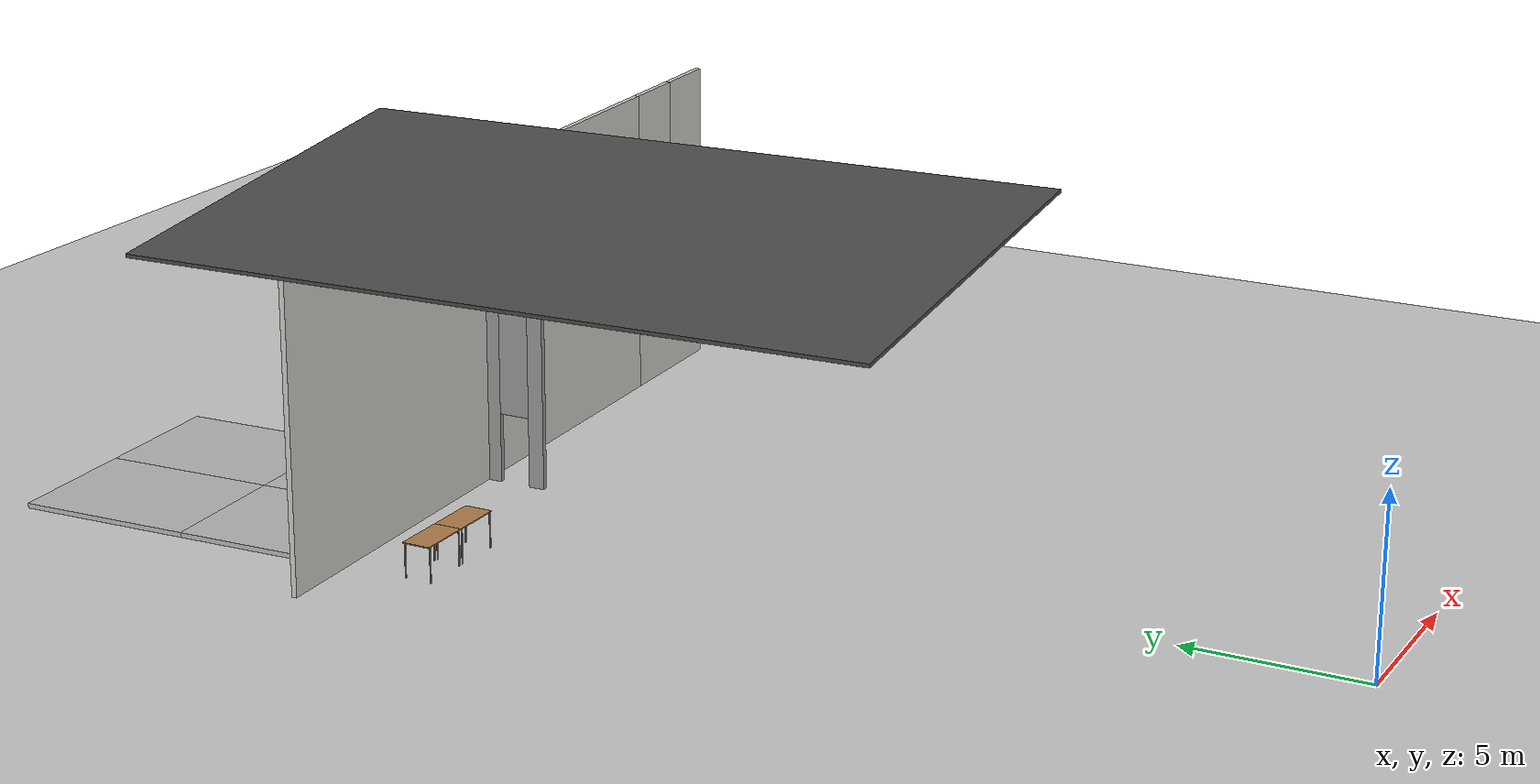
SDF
<sdf version="1.7">
 <world name="default">
  <model name="ground_plane">
   <static>1</static>
   <link name="link">
    <collision name="collision">
     <geometry><plane><normal>0 0 1</normal><size>100 100</size></plane></geometry>
     <surface><friction><ode><mu>100</mu><mu2>50</mu2></ode></friction></surface>
    </collision>
    <visual name="visual">
     <cast_shadows>0</cast_shadows>
     <geometry><plane><normal>0 0 1</normal><size>100 100</size></plane></geometry>
     <material>
      <script><uri>file://media/materials/scripts/gazebo.material</uri><name>Gazebo/Grey</name></script>
     </material>
    </visual>
   </link>
  </model>
  <model name="vehicle_test1">
   <pose>1.6419 -2.1357 0 0 -0 0</pose>
   <link name="Wall_7">
    <pose>2.0191 28.2467 0 0 -0 0.031157</pose>
    <visual name="Wall_7_Visual_0">
     <pose>-2.00829 0 4.5 0 -0 0</pose>
     <geometry><box><size>18.7004 0.15 9</size></box></geometry>
     <material>
      <script><uri>file://media/materials/scripts/gazebo.material</uri><name>Gazebo/CeilingTiled</name></script>
      <ambient>0.921569 0.807843 0.615686 1</ambient>
     </material>
     <meta><layer>0</layer></meta>
    </visual>
    <collision name="Wall_7_Collision_0">
     <geometry><box><size>18.7004 0.15 9</size></box></geometry>
     <pose>-2.00829 0 4.5 0 -0 0</pose>
    </collision>
    <visual name="Wall_7_Visual_1">
     <pose>9.35019 0 1.5 0 -0 0</pose>
     <geometry><box><size>4.01657 0.15 3</size></box></geometry>
     <material>
      <script><uri>file://media/materials/scripts/gazebo.material</uri><name>Gazebo/CeilingTiled</name></script>
      <ambient>0.921569 0.807843 0.615686 1</ambient>
     </material>
     <meta><layer>0</layer></meta>
    </visual>
    <collision name="Wall_7_Collision_1">
     <geometry><box><size>4.01657 0.15 3</size></box></geometry>
     <pose>9.35019 0 1.5 0 -0 0</pose>
    </collision>
    <visual name="Wall_7_Visual_2">
     <pose>10.3502 0 6 0 -0 0</pose>
     <geometry><box><size>2.01658 0.15 6</size></box></geometry>
     <material>
      <script><uri>file://media/materials/scripts/gazebo.material</uri><name>Gazebo/CeilingTiled</name></script>
      <ambient>0.921569 0.807843 0.615686 1</ambient>
     </material>
     <meta><layer>0</layer></meta>
    </visual>
    <collision name="Wall_7_Collision_2">
     <geometry><box><size>2.01658 0.15 6</size></box></geometry>
     <pose>10.3502 0 6 0 -0 0</pose>
    </collision>
    <visual name="Wall_7_Visual_3">
     <pose>8.3419 0 6.5 0 -0 0</pose>
     <geometry><box><size>2 0.15 5</size></box></geometry>
     <material>
      <script><uri>file://media/materials/scripts/gazebo.material</uri><name>Gazebo/CeilingTiled</name></script>
      <ambient>0.921569 0.807843 0.615686 1</ambient>
     </material>
     <meta><layer>0</layer></meta>
    </visual>
    <collision name="Wall_7_Collision_3">
     <geometry><box><size>2 0.15 5</size></box></geometry>
     <pose>8.3419 0 6.5 0 -0 0</pose>
    </collision>
   </link>
   <link name="Wall_84">
    <pose>0.396102 27.2322 0 0 -0 1.5708</pose>
    <visual name="Wall_84_Visual_0">
     <pose>-0.644142 0 2.5 0 -0 0</pose>
     <geometry><box><size>0.461716 0.15 5</size></box></geometry>
     <material>
      <script><uri>file://media/materials/scripts/gazebo.material</uri><name>Gazebo/Grey</name></script>
      <ambient>1 1 1 1</ambient>
     </material>
     <meta><layer>0</layer></meta>
    </visual>
    <collision name="Wall_84_Collision_0">
     <geometry><box><size>0.461716 0.15 5</size></box></geometry>
     <pose>-0.644142 0 2.5 0 -0 0</pose>
    </collision>
    <visual name="Wall_84_Visual_1">
     <pose>0.680858 0 2.5 0 -0 0</pose>
     <geometry><box><size>0.388284 0.15 5</size></box></geometry>
     <material>
      <script><uri>file://media/materials/scripts/gazebo.material</uri><name>Gazebo/Grey</name></script>
      <ambient>1 1 1 1</ambient>
     </material>
     <meta><layer>0</layer></meta>
    </visual>
    <collision name="Wall_84_Collision_1">
     <geometry><box><size>0.388284 0.15 5</size></box></geometry>
     <pose>0.680858 0 2.5 0 -0 0</pose>
    </collision>
    <visual name="Wall_84_Visual_2">
     <pose>0.036716 0 3.5 0 -0 0</pose>
     <geometry><box><size>0.9 0.15 3</size></box></geometry>
     <material>
      <script><uri>file://media/materials/scripts/gazebo.material</uri><name>Gazebo/Grey</name></script>
      <ambient>1 1 1 1</ambient>
     </material>
     <meta><layer>0</layer></meta>
    </visual>
    <collision name="Wall_84_Collision_2">
     <geometry><box><size>0.9 0.15 3</size></box></geometry>
     <pose>0.036716 0 3.5 0 -0 0</pose>
    </collision>
   </link>
   <static>1</static>
  </model>
  <model name="mud_box_1">
   <static>1</static>
   <link name="link">
    <collision name="collision"><geometry><box><size>8 10 0.2</size></box></geometry></collision>
    <visual name="visual_1">
     <pose>-2 2.5 0 0 -0 0</pose>
     <cast_shadows>0</cast_shadows>
     <geometry><box><size>4 5 0.2</size></box></geometry>
     <material>
      <script>
       <uri>model://mud_box/materials/scripts</uri>
       <uri>model://mud_box/materials/textures</uri>
       <name>vrc/mud</name>
      </script>
     </material>
    </visual>
    <visual name="visual_2">
     <pose>2 2.5 0 0 -0 0</pose>
     <cast_shadows>0</cast_shadows>
     <geometry><box><size>4 5 0.2</size></box></geometry>
     <material>
      <script>
       <uri>model://mud_box/materials/scripts</uri>
       <uri>model://mud_box/materials/textures</uri>
       <name>vrc/mud</name>
      </script>
     </material>
    </visual>
    <visual name="visual_3">
     <pose>2 -2.5 0 0 -0 0</pose>
     <cast_shadows>0</cast_shadows>
     <geometry><box><size>4 5 0.2</size></box></geometry>
     <material>
      <script>
       <uri>model://mud_box/materials/scripts</uri>
       <uri>model://mud_box/materials/textures</uri>
       <name>vrc/mud</name>
      </script>
     </material>
    </visual>
    <visual name="visual_4">
     <pose>-2 -2.5 0 0 -0 0</pose>
     <cast_shadows>0</cast_shadows>
     <geometry><box><size>4 5 0.2</size></box></geometry>
     <material>
      <script>
       <uri>model://mud_box/materials/scripts</uri>
       <uri>model://mud_box/materials/textures</uri>
       <name>vrc/mud</name>
      </script>
     </material>
    </visual>
   </link>
   <pose>-1.6161 31.0602 0 0 -0 0.039813</pose>
  </model>
  <model name="table">
   <static>1</static>
   <link name="link">
    <collision name="surface">
     <pose>0 0 1 0 -0 0</pose>
     <geometry><box><size>1.5 0.8 0.03</size></box></geometry>
     <surface><friction><ode><mu>0.6</mu><mu2>0.6</mu2></ode></friction></surface>
    </collision>
    <visual name="visual1">
     <pose>0 0 1 0 -0 0</pose>
     <geometry><box><size>1.5 0.8 0.03</size></box></geometry>
     <material>
      <script><uri>file://media/materials/scripts/gazebo.material</uri><name>Gazebo/Wood</name></script>
     </material>
    </visual>
    <collision name="front_left_leg">
     <pose>0.68 0.38 0.5 0 -0 0</pose>
     <geometry><cylinder><radius>0.02</radius><length>1</length></cylinder></geometry>
    </collision>
    <visual name="front_left_leg">
     <pose>0.68 0.38 0.5 0 -0 0</pose>
     <geometry><cylinder><radius>0.02</radius><length>1</length></cylinder></geometry>
     <material>
      <script><uri>file://media/materials/scripts/gazebo.material</uri><name>Gazebo/Grey</name></script>
     </material>
    </visual>
    <collision name="front_right_leg">
     <pose>0.68 -0.38 0.5 0 -0 0</pose>
     <geometry><cylinder><radius>0.02</radius><length>1</length></cylinder></geometry>
    </collision>
    <visual name="front_right_leg">
     <pose>0.68 -0.38 0.5 0 -0 0</pose>
     <geometry><cylinder><radius>0.02</radius><length>1</length></cylinder></geometry>
     <material>
      <script><uri>file://media/materials/scripts/gazebo.material</uri><name>Gazebo/Grey</name></script>
     </material>
    </visual>
    <collision name="back_right_leg">
     <pose>-0.68 -0.38 0.5 0 -0 0</pose>
     <geometry><cylinder><radius>0.02</radius><length>1</length></cylinder></geometry>
    </collision>
    <visual name="back_right_leg">
     <pose>-0.68 -0.38 0.5 0 -0 0</pose>
     <geometry><cylinder><radius>0.02</radius><length>1</length></cylinder></geometry>
     <material>
      <script><uri>file://media/materials/scripts/gazebo.material</uri><name>Gazebo/Grey</name></script>
     </material>
    </visual>
    <collision name="back_left_leg">
     <pose>-0.68 0.38 0.5 0 -0 0</pose>
     <geometry><cylinder><radius>0.02</radius><length>1</length></cylinder></geometry>
    </collision>
    <visual name="back_left_leg">
     <pose>-0.68 0.38 0.5 0 -0 0</pose>
     <geometry><cylinder><radius>0.02</radius><length>1</length></cylinder></geometry>
     <material>
      <script><uri>file://media/materials/scripts/gazebo.material</uri><name>Gazebo/Grey</name></script>
     </material>
    </visual>
   </link>
   <pose>-4.58897 23.6018 0 0 -0 0</pose>
  </model>
  <model name="table_1">
   <static>1</static>
   <link name="link">
    <collision name="surface">
     <pose>0 0 1 0 -0 0</pose>
     <geometry><box><size>1.5 0.8 0.03</size></box></geometry>
     <surface><friction><ode><mu>0.6</mu><mu2>0.6</mu2></ode></friction></surface>
    </collision>
    <visual name="visual1">
     <pose>0 0 1 0 -0 0</pose>
     <geometry><box><size>1.5 0.8 0.03</size></box></geometry>
     <material>
      <script><uri>file://media/materials/scripts/gazebo.material</uri><name>Gazebo/Wood</name></script>
     </material>
    </visual>
    <collision name="front_left_leg">
     <pose>0.68 0.38 0.5 0 -0 0</pose>
     <geometry><cylinder><radius>0.02</radius><length>1</length></cylinder></geometry>
    </collision>
    <visual name="front_left_leg">
     <pose>0.68 0.38 0.5 0 -0 0</pose>
     <geometry><cylinder><radius>0.02</radius><length>1</length></cylinder></geometry>
     <material>
      <script><uri>file://media/materials/scripts/gazebo.material</uri><name>Gazebo/Grey</name></script>
     </material>
    </visual>
    <collision name="front_right_leg">
     <pose>0.68 -0.38 0.5 0 -0 0</pose>
     <geometry><cylinder><radius>0.02</radius><length>1</length></cylinder></geometry>
    </collision>
    <visual name="front_right_leg">
     <pose>0.68 -0.38 0.5 0 -0 0</pose>
     <geometry><cylinder><radius>0.02</radius><length>1</length></cylinder></geometry>
     <material>
      <script><uri>file://media/materials/scripts/gazebo.material</uri><name>Gazebo/Grey</name></script>
     </material>
    </visual>
    <collision name="back_right_leg">
     <pose>-0.68 -0.38 0.5 0 -0 0</pose>
     <geometry><cylinder><radius>0.02</radius><length>1</length></cylinder></geometry>
    </collision>
    <visual name="back_right_leg">
     <pose>-0.68 -0.38 0.5 0 -0 0</pose>
     <geometry><cylinder><radius>0.02</radius><length>1</length></cylinder></geometry>
     <material>
      <script><uri>file://media/materials/scripts/gazebo.material</uri><name>Gazebo/Grey</name></script>
     </material>
    </visual>
    <collision name="back_left_leg">
     <pose>-0.68 0.38 0.5 0 -0 0</pose>
     <geometry><cylinder><radius>0.02</radius><length>1</length></cylinder></geometry>
    </collision>
    <visual name="back_left_leg">
     <pose>-0.68 0.38 0.5 0 -0 0</pose>
     <geometry><cylinder><radius>0.02</radius><length>1</length></cylinder></geometry>
     <material>
      <script><uri>file://media/materials/scripts/gazebo.material</uri><name>Gazebo/Grey</name></script>
     </material>
    </visual>
   </link>
   <pose>-3.08995 23.5988 0 0 -0 0</pose>
  </model>
  <model name="asphalt_plane">
   <static>1</static>
   <link name="link">
    <collision name="collision"><geometry><box><size>11.8707 20 0.1</size></box></geometry></collision>
    <visual name="visual">
     <cast_shadows>0</cast_shadows>
     <geometry><box><size>11.8707 20 0.1</size></box></geometry>
     <material>
      <script>
       <uri>model://asphalt_plane/materials/scripts</uri>
       <uri>model://asphalt_plane/materials/textures</uri>
       <name>vrc/asphalt</name>
      </script>
     </material>
    </visual>
   </link>
   <pose>-2.79925 19.6291 9.44458 -0.004475 -0.093342 0.032301</pose>
  </model>
 </world>
</sdf>
